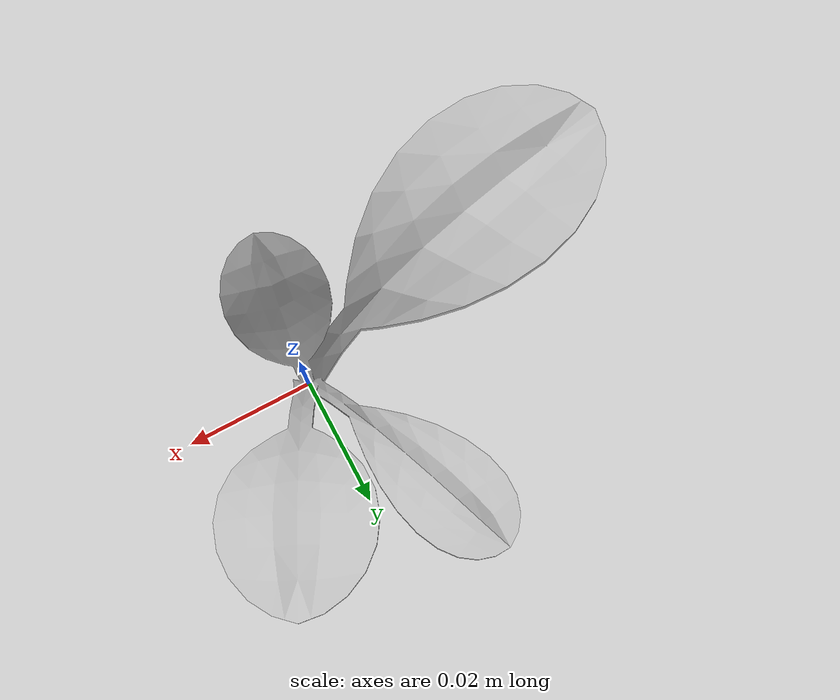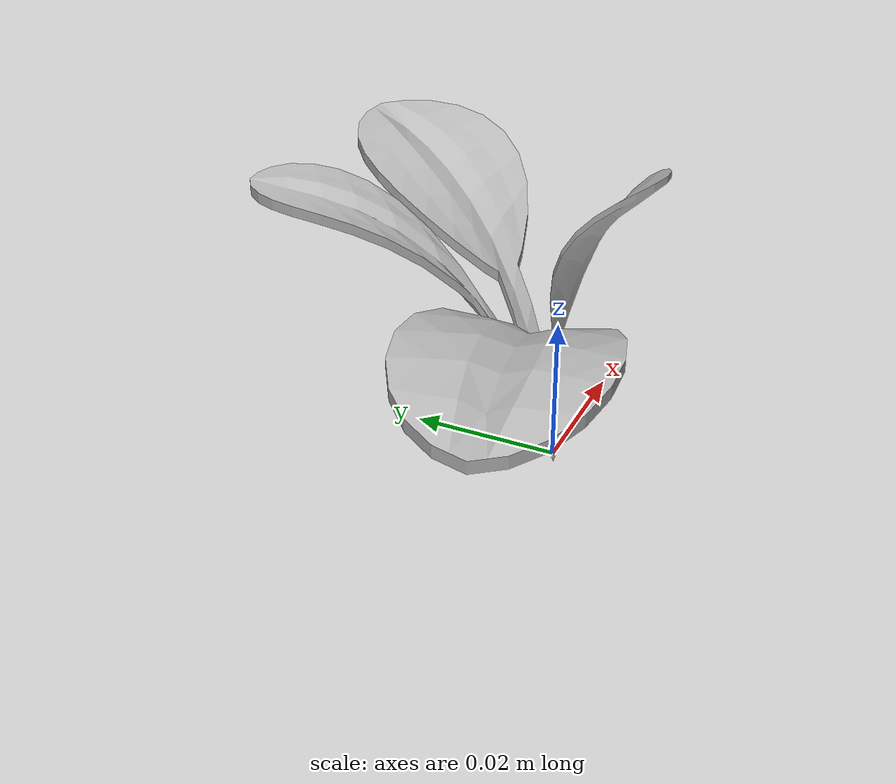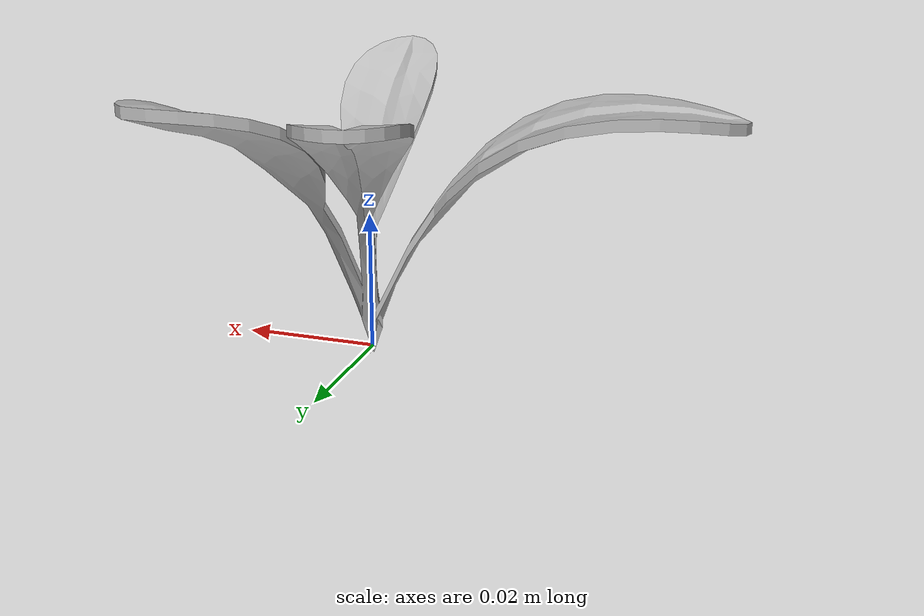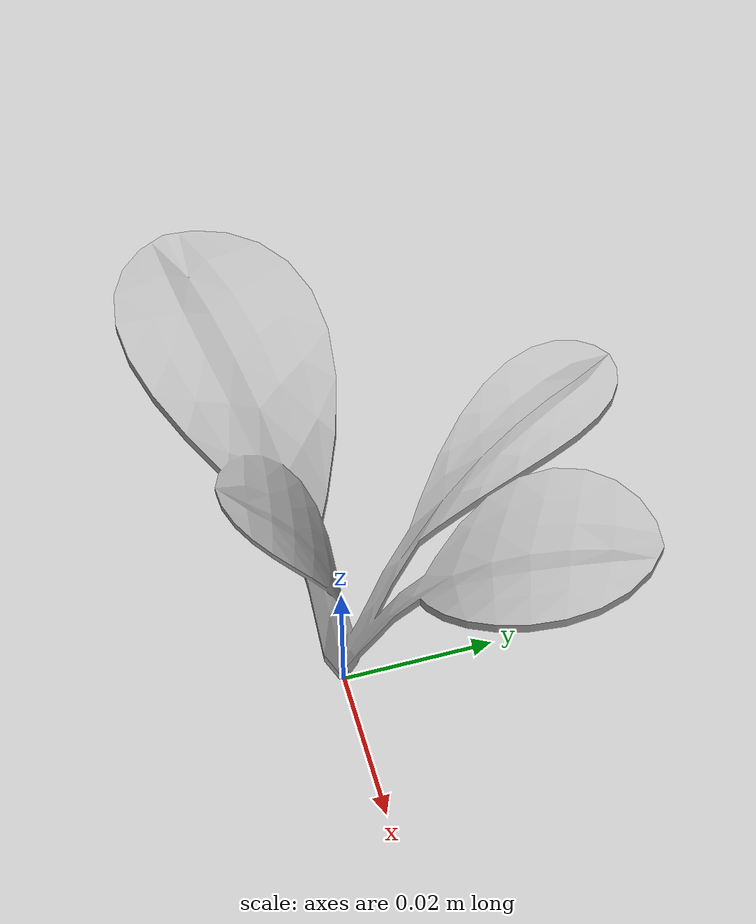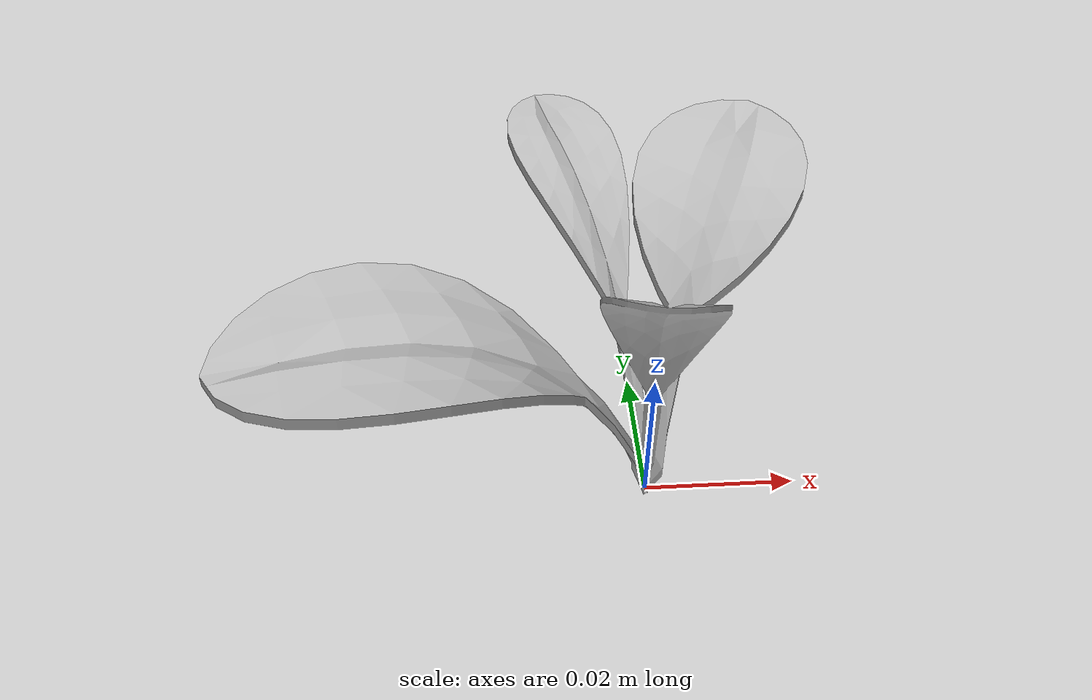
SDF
<sdf version="1.6">
  <model name="sugar_beet_35">
    <static>true</static>
    <link name="body">
      <visual name="visual">
        <geometry>
          <mesh>
            <uri>file:///sugar_beet_35/media/sugar_beet.dae</uri>
          </mesh>
        </geometry>
      </visual>
    </link>
  </model>
</sdf>
